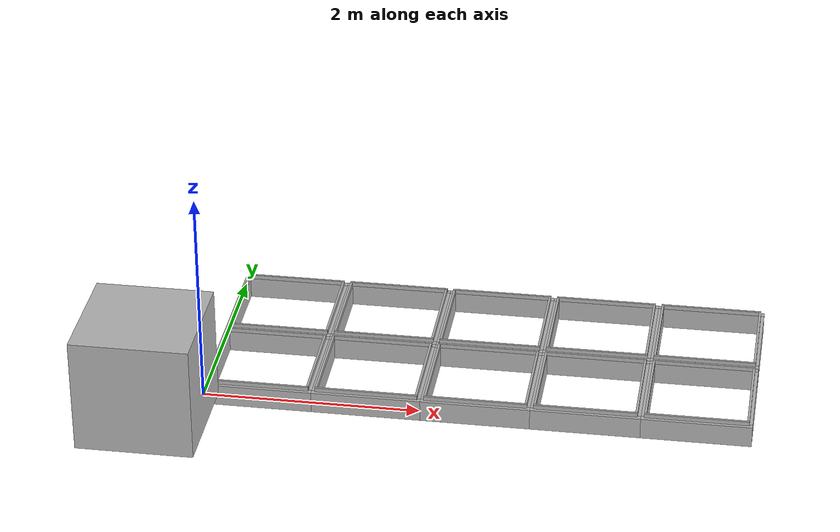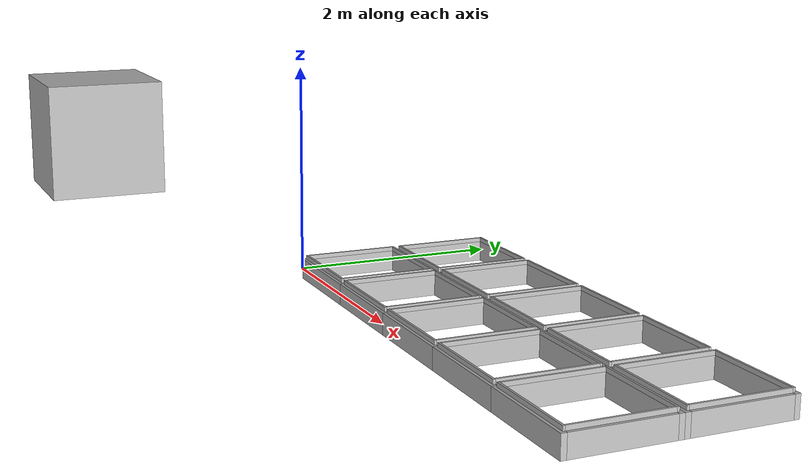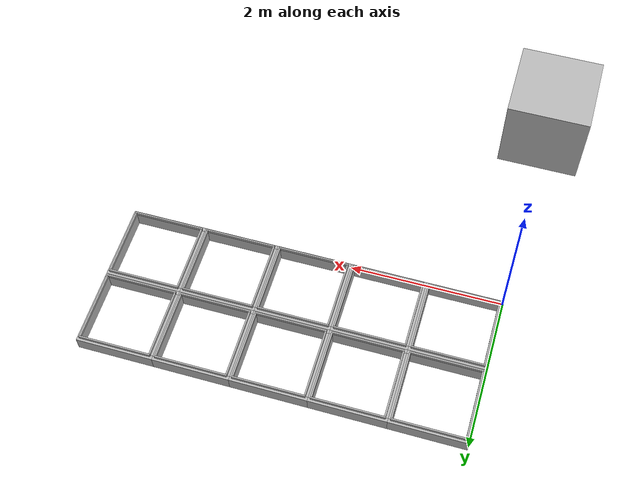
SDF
<sdf version="1.4">
 <model name="box">
  <pose>0 -2 1.5 0 0 0</pose>
  <link name="link">
   <collision name="collision"><geometry><box><size>1 1 1</size></box></geometry></collision>
   <visual name="visual"><geometry><box><size>1 1 1</size></box></geometry></visual>
  </link>
  <plugin name="harness" filename="libgazebo_ros_harness.so">
   <ros>
    <namespace>demo</namespace>
    <argument>box/harness/velocity:=velocity_demo</argument>
    <argument>box/harness/detach:=detach_demo</argument>
   </ros>
   <joint name="joint1" type="prismatic">
    <parent>world</parent>
    <child>link</child>
    <axis>
     <xyz>0 0 1</xyz>
     <dynamics><damping>10</damping></dynamics>
     <limit>
      <lower>-1.5</lower>
      <upper>1.5</upper>
      <effort>10000</effort>
      <velocity>-1</velocity>
      <stiffness>0</stiffness>
      <dissipation>0</dissipation>
     </limit>
    </axis>
    <physics>
     <ode><implicit_spring_damper>1</implicit_spring_damper><limit><cfm>0.0</cfm><erp>0.0</erp></limit></ode>
    </physics>
   </joint>
   <winch>
    <joint>joint1</joint>
    <pos_pid>
     <p>1000000</p>
     <i>0</i>
     <d>0</d>
     <i_min>0</i_min>
     <i_max>0</i_max>
     <cmd_min>-10000</cmd_min>
     <cmd_max>10000</cmd_max>
    </pos_pid>
    <vel_pid>
     <p>10000</p>
     <i>0</i>
     <d>0</d>
     <i_min>0</i_min>
     <i_max>0</i_max>
     <cmd_min>0</cmd_min>
     <cmd_max>10000</cmd_max>
    </vel_pid>
   </winch>
   <detach>joint1</detach>
  </plugin>
 </model>
 <model name="Auto Store Frame">
  <static>true</static>
  <link name="cell_00">
   <pose>0.5 0.5 0 0 0 0</pose>
   <collision name="frame_collision_x1">
    <pose>0 -0.475 0 0 0 0</pose>
    <geometry><box><size>1 0.05 0.2 0 0 0</size></box></geometry>
   </collision>
   <collision name="frame_collision_x2">
    <pose>0 0.475 0 0 0 0</pose>
    <geometry><box><size>1 0.05 0.2 0 0 0</size></box></geometry>
   </collision>
   <collision name="frame_collision_y1">
    <pose>-0.475 0 0 0 0 0</pose>
    <geometry><box><size>0.05 0.9 0.2 0 0 0</size></box></geometry>
   </collision>
   <collision name="frame_collision_y2">
    <pose>0.475 0 0 0 0 0</pose>
    <geometry><box><size>0.05 0.9 0.2 0 0 0</size></box></geometry>
   </collision>
   <collision name="guide_collision_x1">
    <pose>0 -0.46 0.12 0 0 0</pose>
    <geometry><box><size>0.94 0.02 0.04 0 0 0</size></box></geometry>
   </collision>
   <collision name="guide_collision_x2">
    <pose>0 0.46 0.12 0 0 0</pose>
    <geometry><box><size>0.94 0.02 0.04 0 0 0</size></box></geometry>
   </collision>
   <collision name="guide_collision_y1">
    <pose>-0.46 0 0.12 0 0 0</pose>
    <geometry><box><size>0.02 0.9 0.04 0 0 0</size></box></geometry>
   </collision>
   <collision name="guide_collision_y2">
    <pose>0.46 0 0.12 0 0 0</pose>
    <geometry><box><size>0.02 0.9 0.04 0 0 0</size></box></geometry>
   </collision>
   <visual name="frame_visual_x1">
    <pose>0 -0.475 0 0 0 0</pose>
    <geometry><box><size>1 0.05 0.2 0 0 0</size></box></geometry>
   </visual>
   <visual name="frame_visual_x2">
    <pose>0 0.475 0 0 0 0</pose>
    <geometry><box><size>1 0.05 0.2 0 0 0</size></box></geometry>
   </visual>
   <visual name="frame_visual_y1">
    <pose>-0.475 0 0 0 0 0</pose>
    <geometry><box><size>0.05 0.9 0.2 0 0 0</size></box></geometry>
   </visual>
   <visual name="frame_visual_y2">
    <pose>0.475 0 0 0 0 0</pose>
    <geometry><box><size>0.05 0.9 0.2 0 0 0</size></box></geometry>
   </visual>
   <visual name="guide_visual_x1">
    <pose>0 -0.46 0.12 0 0 0</pose>
    <geometry><box><size>0.94 0.02 0.04 0 0 0</size></box></geometry>
   </visual>
   <visual name="guide_visual_x2">
    <pose>0 0.46 0.12 0 0 0</pose>
    <geometry><box><size>0.94 0.02 0.04 0 0 0</size></box></geometry>
   </visual>
   <visual name="guide_visual_y1">
    <pose>-0.46 0 0.12 0 0 0</pose>
    <geometry><box><size>0.02 0.9 0.04 0 0 0</size></box></geometry>
   </visual>
   <visual name="guide_visual_y2">
    <pose>0.46 0 0.12 0 0 0</pose>
    <geometry><box><size>0.02 0.9 0.04 0 0 0</size></box></geometry>
   </visual>
  </link>
  <link name="cell_01">
   <pose>0.5 1.5 0 0 0 0</pose>
   <collision name="frame_collision_x1">
    <pose>0 -0.475 0 0 0 0</pose>
    <geometry><box><size>1 0.05 0.2 0 0 0</size></box></geometry>
   </collision>
   <collision name="frame_collision_x2">
    <pose>0 0.475 0 0 0 0</pose>
    <geometry><box><size>1 0.05 0.2 0 0 0</size></box></geometry>
   </collision>
   <collision name="frame_collision_y1">
    <pose>-0.475 0 0 0 0 0</pose>
    <geometry><box><size>0.05 0.9 0.2 0 0 0</size></box></geometry>
   </collision>
   <collision name="frame_collision_y2">
    <pose>0.475 0 0 0 0 0</pose>
    <geometry><box><size>0.05 0.9 0.2 0 0 0</size></box></geometry>
   </collision>
   <collision name="guide_collision_x1">
    <pose>0 -0.46 0.12 0 0 0</pose>
    <geometry><box><size>0.94 0.02 0.04 0 0 0</size></box></geometry>
   </collision>
   <collision name="guide_collision_x2">
    <pose>0 0.46 0.12 0 0 0</pose>
    <geometry><box><size>0.94 0.02 0.04 0 0 0</size></box></geometry>
   </collision>
   <collision name="guide_collision_y1">
    <pose>-0.46 0 0.12 0 0 0</pose>
    <geometry><box><size>0.02 0.9 0.04 0 0 0</size></box></geometry>
   </collision>
   <collision name="guide_collision_y2">
    <pose>0.46 0 0.12 0 0 0</pose>
    <geometry><box><size>0.02 0.9 0.04 0 0 0</size></box></geometry>
   </collision>
   <visual name="frame_visual_x1">
    <pose>0 -0.475 0 0 0 0</pose>
    <geometry><box><size>1 0.05 0.2 0 0 0</size></box></geometry>
   </visual>
   <visual name="frame_visual_x2">
    <pose>0 0.475 0 0 0 0</pose>
    <geometry><box><size>1 0.05 0.2 0 0 0</size></box></geometry>
   </visual>
   <visual name="frame_visual_y1">
    <pose>-0.475 0 0 0 0 0</pose>
    <geometry><box><size>0.05 0.9 0.2 0 0 0</size></box></geometry>
   </visual>
   <visual name="frame_visual_y2">
    <pose>0.475 0 0 0 0 0</pose>
    <geometry><box><size>0.05 0.9 0.2 0 0 0</size></box></geometry>
   </visual>
   <visual name="guide_visual_x1">
    <pose>0 -0.46 0.12 0 0 0</pose>
    <geometry><box><size>0.94 0.02 0.04 0 0 0</size></box></geometry>
   </visual>
   <visual name="guide_visual_x2">
    <pose>0 0.46 0.12 0 0 0</pose>
    <geometry><box><size>0.94 0.02 0.04 0 0 0</size></box></geometry>
   </visual>
   <visual name="guide_visual_y1">
    <pose>-0.46 0 0.12 0 0 0</pose>
    <geometry><box><size>0.02 0.9 0.04 0 0 0</size></box></geometry>
   </visual>
   <visual name="guide_visual_y2">
    <pose>0.46 0 0.12 0 0 0</pose>
    <geometry><box><size>0.02 0.9 0.04 0 0 0</size></box></geometry>
   </visual>
  </link>
  <link name="cell_10">
   <pose>1.5 0.5 0 0 0 0</pose>
   <collision name="frame_collision_x1">
    <pose>0 -0.475 0 0 0 0</pose>
    <geometry><box><size>1 0.05 0.2 0 0 0</size></box></geometry>
   </collision>
   <collision name="frame_collision_x2">
    <pose>0 0.475 0 0 0 0</pose>
    <geometry><box><size>1 0.05 0.2 0 0 0</size></box></geometry>
   </collision>
   <collision name="frame_collision_y1">
    <pose>-0.475 0 0 0 0 0</pose>
    <geometry><box><size>0.05 0.9 0.2 0 0 0</size></box></geometry>
   </collision>
   <collision name="frame_collision_y2">
    <pose>0.475 0 0 0 0 0</pose>
    <geometry><box><size>0.05 0.9 0.2 0 0 0</size></box></geometry>
   </collision>
   <collision name="guide_collision_x1">
    <pose>0 -0.46 0.12 0 0 0</pose>
    <geometry><box><size>0.94 0.02 0.04 0 0 0</size></box></geometry>
   </collision>
   <collision name="guide_collision_x2">
    <pose>0 0.46 0.12 0 0 0</pose>
    <geometry><box><size>0.94 0.02 0.04 0 0 0</size></box></geometry>
   </collision>
   <collision name="guide_collision_y1">
    <pose>-0.46 0 0.12 0 0 0</pose>
    <geometry><box><size>0.02 0.9 0.04 0 0 0</size></box></geometry>
   </collision>
   <collision name="guide_collision_y2">
    <pose>0.46 0 0.12 0 0 0</pose>
    <geometry><box><size>0.02 0.9 0.04 0 0 0</size></box></geometry>
   </collision>
   <visual name="frame_visual_x1">
    <pose>0 -0.475 0 0 0 0</pose>
    <geometry><box><size>1 0.05 0.2 0 0 0</size></box></geometry>
   </visual>
   <visual name="frame_visual_x2">
    <pose>0 0.475 0 0 0 0</pose>
    <geometry><box><size>1 0.05 0.2 0 0 0</size></box></geometry>
   </visual>
   <visual name="frame_visual_y1">
    <pose>-0.475 0 0 0 0 0</pose>
    <geometry><box><size>0.05 0.9 0.2 0 0 0</size></box></geometry>
   </visual>
   <visual name="frame_visual_y2">
    <pose>0.475 0 0 0 0 0</pose>
    <geometry><box><size>0.05 0.9 0.2 0 0 0</size></box></geometry>
   </visual>
   <visual name="guide_visual_x1">
    <pose>0 -0.46 0.12 0 0 0</pose>
    <geometry><box><size>0.94 0.02 0.04 0 0 0</size></box></geometry>
   </visual>
   <visual name="guide_visual_x2">
    <pose>0 0.46 0.12 0 0 0</pose>
    <geometry><box><size>0.94 0.02 0.04 0 0 0</size></box></geometry>
   </visual>
   <visual name="guide_visual_y1">
    <pose>-0.46 0 0.12 0 0 0</pose>
    <geometry><box><size>0.02 0.9 0.04 0 0 0</size></box></geometry>
   </visual>
   <visual name="guide_visual_y2">
    <pose>0.46 0 0.12 0 0 0</pose>
    <geometry><box><size>0.02 0.9 0.04 0 0 0</size></box></geometry>
   </visual>
  </link>
  <link name="cell_11">
   <pose>1.5 1.5 0 0 0 0</pose>
   <collision name="frame_collision_x1">
    <pose>0 -0.475 0 0 0 0</pose>
    <geometry><box><size>1 0.05 0.2 0 0 0</size></box></geometry>
   </collision>
   <collision name="frame_collision_x2">
    <pose>0 0.475 0 0 0 0</pose>
    <geometry><box><size>1 0.05 0.2 0 0 0</size></box></geometry>
   </collision>
   <collision name="frame_collision_y1">
    <pose>-0.475 0 0 0 0 0</pose>
    <geometry><box><size>0.05 0.9 0.2 0 0 0</size></box></geometry>
   </collision>
   <collision name="frame_collision_y2">
    <pose>0.475 0 0 0 0 0</pose>
    <geometry><box><size>0.05 0.9 0.2 0 0 0</size></box></geometry>
   </collision>
   <collision name="guide_collision_x1">
    <pose>0 -0.46 0.12 0 0 0</pose>
    <geometry><box><size>0.94 0.02 0.04 0 0 0</size></box></geometry>
   </collision>
   <collision name="guide_collision_x2">
    <pose>0 0.46 0.12 0 0 0</pose>
    <geometry><box><size>0.94 0.02 0.04 0 0 0</size></box></geometry>
   </collision>
   <collision name="guide_collision_y1">
    <pose>-0.46 0 0.12 0 0 0</pose>
    <geometry><box><size>0.02 0.9 0.04 0 0 0</size></box></geometry>
   </collision>
   <collision name="guide_collision_y2">
    <pose>0.46 0 0.12 0 0 0</pose>
    <geometry><box><size>0.02 0.9 0.04 0 0 0</size></box></geometry>
   </collision>
   <visual name="frame_visual_x1">
    <pose>0 -0.475 0 0 0 0</pose>
    <geometry><box><size>1 0.05 0.2 0 0 0</size></box></geometry>
   </visual>
   <visual name="frame_visual_x2">
    <pose>0 0.475 0 0 0 0</pose>
    <geometry><box><size>1 0.05 0.2 0 0 0</size></box></geometry>
   </visual>
   <visual name="frame_visual_y1">
    <pose>-0.475 0 0 0 0 0</pose>
    <geometry><box><size>0.05 0.9 0.2 0 0 0</size></box></geometry>
   </visual>
   <visual name="frame_visual_y2">
    <pose>0.475 0 0 0 0 0</pose>
    <geometry><box><size>0.05 0.9 0.2 0 0 0</size></box></geometry>
   </visual>
   <visual name="guide_visual_x1">
    <pose>0 -0.46 0.12 0 0 0</pose>
    <geometry><box><size>0.94 0.02 0.04 0 0 0</size></box></geometry>
   </visual>
   <visual name="guide_visual_x2">
    <pose>0 0.46 0.12 0 0 0</pose>
    <geometry><box><size>0.94 0.02 0.04 0 0 0</size></box></geometry>
   </visual>
   <visual name="guide_visual_y1">
    <pose>-0.46 0 0.12 0 0 0</pose>
    <geometry><box><size>0.02 0.9 0.04 0 0 0</size></box></geometry>
   </visual>
   <visual name="guide_visual_y2">
    <pose>0.46 0 0.12 0 0 0</pose>
    <geometry><box><size>0.02 0.9 0.04 0 0 0</size></box></geometry>
   </visual>
  </link>
  <link name="cell_20">
   <pose>2.5 0.5 0 0 0 0</pose>
   <collision name="frame_collision_x1">
    <pose>0 -0.475 0 0 0 0</pose>
    <geometry><box><size>1 0.05 0.2 0 0 0</size></box></geometry>
   </collision>
   <collision name="frame_collision_x2">
    <pose>0 0.475 0 0 0 0</pose>
    <geometry><box><size>1 0.05 0.2 0 0 0</size></box></geometry>
   </collision>
   <collision name="frame_collision_y1">
    <pose>-0.475 0 0 0 0 0</pose>
    <geometry><box><size>0.05 0.9 0.2 0 0 0</size></box></geometry>
   </collision>
   <collision name="frame_collision_y2">
    <pose>0.475 0 0 0 0 0</pose>
    <geometry><box><size>0.05 0.9 0.2 0 0 0</size></box></geometry>
   </collision>
   <collision name="guide_collision_x1">
    <pose>0 -0.46 0.12 0 0 0</pose>
    <geometry><box><size>0.94 0.02 0.04 0 0 0</size></box></geometry>
   </collision>
   <collision name="guide_collision_x2">
    <pose>0 0.46 0.12 0 0 0</pose>
    <geometry><box><size>0.94 0.02 0.04 0 0 0</size></box></geometry>
   </collision>
   <collision name="guide_collision_y1">
    <pose>-0.46 0 0.12 0 0 0</pose>
    <geometry><box><size>0.02 0.9 0.04 0 0 0</size></box></geometry>
   </collision>
   <collision name="guide_collision_y2">
    <pose>0.46 0 0.12 0 0 0</pose>
    <geometry><box><size>0.02 0.9 0.04 0 0 0</size></box></geometry>
   </collision>
   <visual name="frame_visual_x1">
    <pose>0 -0.475 0 0 0 0</pose>
    <geometry><box><size>1 0.05 0.2 0 0 0</size></box></geometry>
   </visual>
   <visual name="frame_visual_x2">
    <pose>0 0.475 0 0 0 0</pose>
    <geometry><box><size>1 0.05 0.2 0 0 0</size></box></geometry>
   </visual>
   <visual name="frame_visual_y1">
    <pose>-0.475 0 0 0 0 0</pose>
    <geometry><box><size>0.05 0.9 0.2 0 0 0</size></box></geometry>
   </visual>
   <visual name="frame_visual_y2">
    <pose>0.475 0 0 0 0 0</pose>
    <geometry><box><size>0.05 0.9 0.2 0 0 0</size></box></geometry>
   </visual>
   <visual name="guide_visual_x1">
    <pose>0 -0.46 0.12 0 0 0</pose>
    <geometry><box><size>0.94 0.02 0.04 0 0 0</size></box></geometry>
   </visual>
   <visual name="guide_visual_x2">
    <pose>0 0.46 0.12 0 0 0</pose>
    <geometry><box><size>0.94 0.02 0.04 0 0 0</size></box></geometry>
   </visual>
   <visual name="guide_visual_y1">
    <pose>-0.46 0 0.12 0 0 0</pose>
    <geometry><box><size>0.02 0.9 0.04 0 0 0</size></box></geometry>
   </visual>
   <visual name="guide_visual_y2">
    <pose>0.46 0 0.12 0 0 0</pose>
    <geometry><box><size>0.02 0.9 0.04 0 0 0</size></box></geometry>
   </visual>
  </link>
  <link name="cell_21">
   <pose>2.5 1.5 0 0 0 0</pose>
   <collision name="frame_collision_x1">
    <pose>0 -0.475 0 0 0 0</pose>
    <geometry><box><size>1 0.05 0.2 0 0 0</size></box></geometry>
   </collision>
   <collision name="frame_collision_x2">
    <pose>0 0.475 0 0 0 0</pose>
    <geometry><box><size>1 0.05 0.2 0 0 0</size></box></geometry>
   </collision>
   <collision name="frame_collision_y1">
    <pose>-0.475 0 0 0 0 0</pose>
    <geometry><box><size>0.05 0.9 0.2 0 0 0</size></box></geometry>
   </collision>
   <collision name="frame_collision_y2">
    <pose>0.475 0 0 0 0 0</pose>
    <geometry><box><size>0.05 0.9 0.2 0 0 0</size></box></geometry>
   </collision>
   <collision name="guide_collision_x1">
    <pose>0 -0.46 0.12 0 0 0</pose>
    <geometry><box><size>0.94 0.02 0.04 0 0 0</size></box></geometry>
   </collision>
   <collision name="guide_collision_x2">
    <pose>0 0.46 0.12 0 0 0</pose>
    <geometry><box><size>0.94 0.02 0.04 0 0 0</size></box></geometry>
   </collision>
   <collision name="guide_collision_y1">
    <pose>-0.46 0 0.12 0 0 0</pose>
    <geometry><box><size>0.02 0.9 0.04 0 0 0</size></box></geometry>
   </collision>
   <collision name="guide_collision_y2">
    <pose>0.46 0 0.12 0 0 0</pose>
    <geometry><box><size>0.02 0.9 0.04 0 0 0</size></box></geometry>
   </collision>
   <visual name="frame_visual_x1">
    <pose>0 -0.475 0 0 0 0</pose>
    <geometry><box><size>1 0.05 0.2 0 0 0</size></box></geometry>
   </visual>
   <visual name="frame_visual_x2">
    <pose>0 0.475 0 0 0 0</pose>
    <geometry><box><size>1 0.05 0.2 0 0 0</size></box></geometry>
   </visual>
   <visual name="frame_visual_y1">
    <pose>-0.475 0 0 0 0 0</pose>
    <geometry><box><size>0.05 0.9 0.2 0 0 0</size></box></geometry>
   </visual>
   <visual name="frame_visual_y2">
    <pose>0.475 0 0 0 0 0</pose>
    <geometry><box><size>0.05 0.9 0.2 0 0 0</size></box></geometry>
   </visual>
   <visual name="guide_visual_x1">
    <pose>0 -0.46 0.12 0 0 0</pose>
    <geometry><box><size>0.94 0.02 0.04 0 0 0</size></box></geometry>
   </visual>
   <visual name="guide_visual_x2">
    <pose>0 0.46 0.12 0 0 0</pose>
    <geometry><box><size>0.94 0.02 0.04 0 0 0</size></box></geometry>
   </visual>
   <visual name="guide_visual_y1">
    <pose>-0.46 0 0.12 0 0 0</pose>
    <geometry><box><size>0.02 0.9 0.04 0 0 0</size></box></geometry>
   </visual>
   <visual name="guide_visual_y2">
    <pose>0.46 0 0.12 0 0 0</pose>
    <geometry><box><size>0.02 0.9 0.04 0 0 0</size></box></geometry>
   </visual>
  </link>
  <link name="cell_30">
   <pose>3.5 0.5 0 0 0 0</pose>
   <collision name="frame_collision_x1">
    <pose>0 -0.475 0 0 0 0</pose>
    <geometry><box><size>1 0.05 0.2 0 0 0</size></box></geometry>
   </collision>
   <collision name="frame_collision_x2">
    <pose>0 0.475 0 0 0 0</pose>
    <geometry><box><size>1 0.05 0.2 0 0 0</size></box></geometry>
   </collision>
   <collision name="frame_collision_y1">
    <pose>-0.475 0 0 0 0 0</pose>
    <geometry><box><size>0.05 0.9 0.2 0 0 0</size></box></geometry>
   </collision>
   <collision name="frame_collision_y2">
    <pose>0.475 0 0 0 0 0</pose>
    <geometry><box><size>0.05 0.9 0.2 0 0 0</size></box></geometry>
   </collision>
   <collision name="guide_collision_x1">
    <pose>0 -0.46 0.12 0 0 0</pose>
    <geometry><box><size>0.94 0.02 0.04 0 0 0</size></box></geometry>
   </collision>
   <collision name="guide_collision_x2">
    <pose>0 0.46 0.12 0 0 0</pose>
    <geometry><box><size>0.94 0.02 0.04 0 0 0</size></box></geometry>
   </collision>
   <collision name="guide_collision_y1">
    <pose>-0.46 0 0.12 0 0 0</pose>
    <geometry><box><size>0.02 0.9 0.04 0 0 0</size></box></geometry>
   </collision>
   <collision name="guide_collision_y2">
    <pose>0.46 0 0.12 0 0 0</pose>
    <geometry><box><size>0.02 0.9 0.04 0 0 0</size></box></geometry>
   </collision>
   <visual name="frame_visual_x1">
    <pose>0 -0.475 0 0 0 0</pose>
    <geometry><box><size>1 0.05 0.2 0 0 0</size></box></geometry>
   </visual>
   <visual name="frame_visual_x2">
    <pose>0 0.475 0 0 0 0</pose>
    <geometry><box><size>1 0.05 0.2 0 0 0</size></box></geometry>
   </visual>
   <visual name="frame_visual_y1">
    <pose>-0.475 0 0 0 0 0</pose>
    <geometry><box><size>0.05 0.9 0.2 0 0 0</size></box></geometry>
   </visual>
   <visual name="frame_visual_y2">
    <pose>0.475 0 0 0 0 0</pose>
    <geometry><box><size>0.05 0.9 0.2 0 0 0</size></box></geometry>
   </visual>
   <visual name="guide_visual_x1">
    <pose>0 -0.46 0.12 0 0 0</pose>
    <geometry><box><size>0.94 0.02 0.04 0 0 0</size></box></geometry>
   </visual>
   <visual name="guide_visual_x2">
    <pose>0 0.46 0.12 0 0 0</pose>
    <geometry><box><size>0.94 0.02 0.04 0 0 0</size></box></geometry>
   </visual>
   <visual name="guide_visual_y1">
    <pose>-0.46 0 0.12 0 0 0</pose>
    <geometry><box><size>0.02 0.9 0.04 0 0 0</size></box></geometry>
   </visual>
   <visual name="guide_visual_y2">
    <pose>0.46 0 0.12 0 0 0</pose>
    <geometry><box><size>0.02 0.9 0.04 0 0 0</size></box></geometry>
   </visual>
  </link>
  <link name="cell_31">
   <pose>3.5 1.5 0 0 0 0</pose>
   <collision name="frame_collision_x1">
    <pose>0 -0.475 0 0 0 0</pose>
    <geometry><box><size>1 0.05 0.2 0 0 0</size></box></geometry>
   </collision>
   <collision name="frame_collision_x2">
    <pose>0 0.475 0 0 0 0</pose>
    <geometry><box><size>1 0.05 0.2 0 0 0</size></box></geometry>
   </collision>
   <collision name="frame_collision_y1">
    <pose>-0.475 0 0 0 0 0</pose>
    <geometry><box><size>0.05 0.9 0.2 0 0 0</size></box></geometry>
   </collision>
   <collision name="frame_collision_y2">
    <pose>0.475 0 0 0 0 0</pose>
    <geometry><box><size>0.05 0.9 0.2 0 0 0</size></box></geometry>
   </collision>
   <collision name="guide_collision_x1">
    <pose>0 -0.46 0.12 0 0 0</pose>
    <geometry><box><size>0.94 0.02 0.04 0 0 0</size></box></geometry>
   </collision>
   <collision name="guide_collision_x2">
    <pose>0 0.46 0.12 0 0 0</pose>
    <geometry><box><size>0.94 0.02 0.04 0 0 0</size></box></geometry>
   </collision>
   <collision name="guide_collision_y1">
    <pose>-0.46 0 0.12 0 0 0</pose>
    <geometry><box><size>0.02 0.9 0.04 0 0 0</size></box></geometry>
   </collision>
   <collision name="guide_collision_y2">
    <pose>0.46 0 0.12 0 0 0</pose>
    <geometry><box><size>0.02 0.9 0.04 0 0 0</size></box></geometry>
   </collision>
   <visual name="frame_visual_x1">
    <pose>0 -0.475 0 0 0 0</pose>
    <geometry><box><size>1 0.05 0.2 0 0 0</size></box></geometry>
   </visual>
   <visual name="frame_visual_x2">
    <pose>0 0.475 0 0 0 0</pose>
    <geometry><box><size>1 0.05 0.2 0 0 0</size></box></geometry>
   </visual>
   <visual name="frame_visual_y1">
    <pose>-0.475 0 0 0 0 0</pose>
    <geometry><box><size>0.05 0.9 0.2 0 0 0</size></box></geometry>
   </visual>
   <visual name="frame_visual_y2">
    <pose>0.475 0 0 0 0 0</pose>
    <geometry><box><size>0.05 0.9 0.2 0 0 0</size></box></geometry>
   </visual>
   <visual name="guide_visual_x1">
    <pose>0 -0.46 0.12 0 0 0</pose>
    <geometry><box><size>0.94 0.02 0.04 0 0 0</size></box></geometry>
   </visual>
   <visual name="guide_visual_x2">
    <pose>0 0.46 0.12 0 0 0</pose>
    <geometry><box><size>0.94 0.02 0.04 0 0 0</size></box></geometry>
   </visual>
   <visual name="guide_visual_y1">
    <pose>-0.46 0 0.12 0 0 0</pose>
    <geometry><box><size>0.02 0.9 0.04 0 0 0</size></box></geometry>
   </visual>
   <visual name="guide_visual_y2">
    <pose>0.46 0 0.12 0 0 0</pose>
    <geometry><box><size>0.02 0.9 0.04 0 0 0</size></box></geometry>
   </visual>
  </link>
  <link name="cell_40">
   <pose>4.5 0.5 0 0 0 0</pose>
   <collision name="frame_collision_x1">
    <pose>0 -0.475 0 0 0 0</pose>
    <geometry><box><size>1 0.05 0.2 0 0 0</size></box></geometry>
   </collision>
   <collision name="frame_collision_x2">
    <pose>0 0.475 0 0 0 0</pose>
    <geometry><box><size>1 0.05 0.2 0 0 0</size></box></geometry>
   </collision>
   <collision name="frame_collision_y1">
    <pose>-0.475 0 0 0 0 0</pose>
    <geometry><box><size>0.05 0.9 0.2 0 0 0</size></box></geometry>
   </collision>
   <collision name="frame_collision_y2">
    <pose>0.475 0 0 0 0 0</pose>
    <geometry><box><size>0.05 0.9 0.2 0 0 0</size></box></geometry>
   </collision>
   <collision name="guide_collision_x1">
    <pose>0 -0.46 0.12 0 0 0</pose>
    <geometry><box><size>0.94 0.02 0.04 0 0 0</size></box></geometry>
   </collision>
   <collision name="guide_collision_x2">
    <pose>0 0.46 0.12 0 0 0</pose>
    <geometry><box><size>0.94 0.02 0.04 0 0 0</size></box></geometry>
   </collision>
   <collision name="guide_collision_y1">
    <pose>-0.46 0 0.12 0 0 0</pose>
    <geometry><box><size>0.02 0.9 0.04 0 0 0</size></box></geometry>
   </collision>
   <collision name="guide_collision_y2">
    <pose>0.46 0 0.12 0 0 0</pose>
    <geometry><box><size>0.02 0.9 0.04 0 0 0</size></box></geometry>
   </collision>
   <visual name="frame_visual_x1">
    <pose>0 -0.475 0 0 0 0</pose>
    <geometry><box><size>1 0.05 0.2 0 0 0</size></box></geometry>
   </visual>
   <visual name="frame_visual_x2">
    <pose>0 0.475 0 0 0 0</pose>
    <geometry><box><size>1 0.05 0.2 0 0 0</size></box></geometry>
   </visual>
   <visual name="frame_visual_y1">
    <pose>-0.475 0 0 0 0 0</pose>
    <geometry><box><size>0.05 0.9 0.2 0 0 0</size></box></geometry>
   </visual>
   <visual name="frame_visual_y2">
    <pose>0.475 0 0 0 0 0</pose>
    <geometry><box><size>0.05 0.9 0.2 0 0 0</size></box></geometry>
   </visual>
   <visual name="guide_visual_x1">
    <pose>0 -0.46 0.12 0 0 0</pose>
    <geometry><box><size>0.94 0.02 0.04 0 0 0</size></box></geometry>
   </visual>
   <visual name="guide_visual_x2">
    <pose>0 0.46 0.12 0 0 0</pose>
    <geometry><box><size>0.94 0.02 0.04 0 0 0</size></box></geometry>
   </visual>
   <visual name="guide_visual_y1">
    <pose>-0.46 0 0.12 0 0 0</pose>
    <geometry><box><size>0.02 0.9 0.04 0 0 0</size></box></geometry>
   </visual>
   <visual name="guide_visual_y2">
    <pose>0.46 0 0.12 0 0 0</pose>
    <geometry><box><size>0.02 0.9 0.04 0 0 0</size></box></geometry>
   </visual>
  </link>
  <link name="cell_41">
   <pose>4.5 1.5 0 0 0 0</pose>
   <collision name="frame_collision_x1">
    <pose>0 -0.475 0 0 0 0</pose>
    <geometry><box><size>1 0.05 0.2 0 0 0</size></box></geometry>
   </collision>
   <collision name="frame_collision_x2">
    <pose>0 0.475 0 0 0 0</pose>
    <geometry><box><size>1 0.05 0.2 0 0 0</size></box></geometry>
   </collision>
   <collision name="frame_collision_y1">
    <pose>-0.475 0 0 0 0 0</pose>
    <geometry><box><size>0.05 0.9 0.2 0 0 0</size></box></geometry>
   </collision>
   <collision name="frame_collision_y2">
    <pose>0.475 0 0 0 0 0</pose>
    <geometry><box><size>0.05 0.9 0.2 0 0 0</size></box></geometry>
   </collision>
   <collision name="guide_collision_x1">
    <pose>0 -0.46 0.12 0 0 0</pose>
    <geometry><box><size>0.94 0.02 0.04 0 0 0</size></box></geometry>
   </collision>
   <collision name="guide_collision_x2">
    <pose>0 0.46 0.12 0 0 0</pose>
    <geometry><box><size>0.94 0.02 0.04 0 0 0</size></box></geometry>
   </collision>
   <collision name="guide_collision_y1">
    <pose>-0.46 0 0.12 0 0 0</pose>
    <geometry><box><size>0.02 0.9 0.04 0 0 0</size></box></geometry>
   </collision>
   <collision name="guide_collision_y2">
    <pose>0.46 0 0.12 0 0 0</pose>
    <geometry><box><size>0.02 0.9 0.04 0 0 0</size></box></geometry>
   </collision>
   <visual name="frame_visual_x1">
    <pose>0 -0.475 0 0 0 0</pose>
    <geometry><box><size>1 0.05 0.2 0 0 0</size></box></geometry>
   </visual>
   <visual name="frame_visual_x2">
    <pose>0 0.475 0 0 0 0</pose>
    <geometry><box><size>1 0.05 0.2 0 0 0</size></box></geometry>
   </visual>
   <visual name="frame_visual_y1">
    <pose>-0.475 0 0 0 0 0</pose>
    <geometry><box><size>0.05 0.9 0.2 0 0 0</size></box></geometry>
   </visual>
   <visual name="frame_visual_y2">
    <pose>0.475 0 0 0 0 0</pose>
    <geometry><box><size>0.05 0.9 0.2 0 0 0</size></box></geometry>
   </visual>
   <visual name="guide_visual_x1">
    <pose>0 -0.46 0.12 0 0 0</pose>
    <geometry><box><size>0.94 0.02 0.04 0 0 0</size></box></geometry>
   </visual>
   <visual name="guide_visual_x2">
    <pose>0 0.46 0.12 0 0 0</pose>
    <geometry><box><size>0.94 0.02 0.04 0 0 0</size></box></geometry>
   </visual>
   <visual name="guide_visual_y1">
    <pose>-0.46 0 0.12 0 0 0</pose>
    <geometry><box><size>0.02 0.9 0.04 0 0 0</size></box></geometry>
   </visual>
   <visual name="guide_visual_y2">
    <pose>0.46 0 0.12 0 0 0</pose>
    <geometry><box><size>0.02 0.9 0.04 0 0 0</size></box></geometry>
   </visual>
  </link>
 </model>
</sdf>
